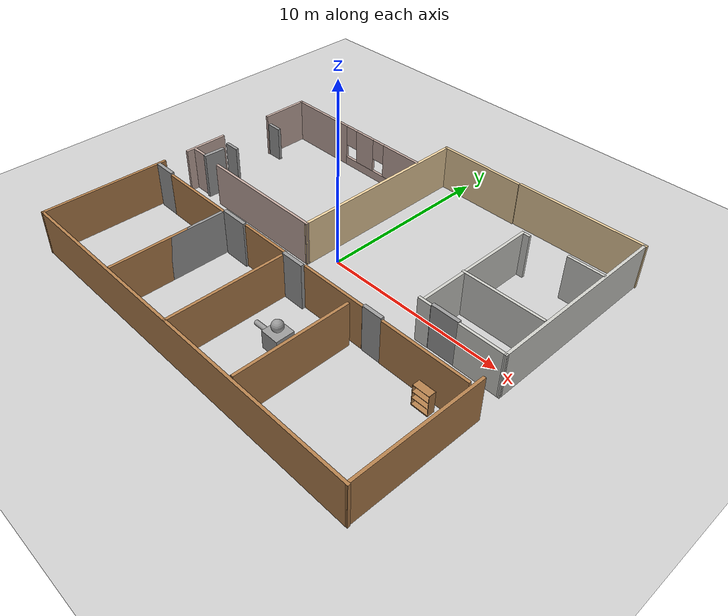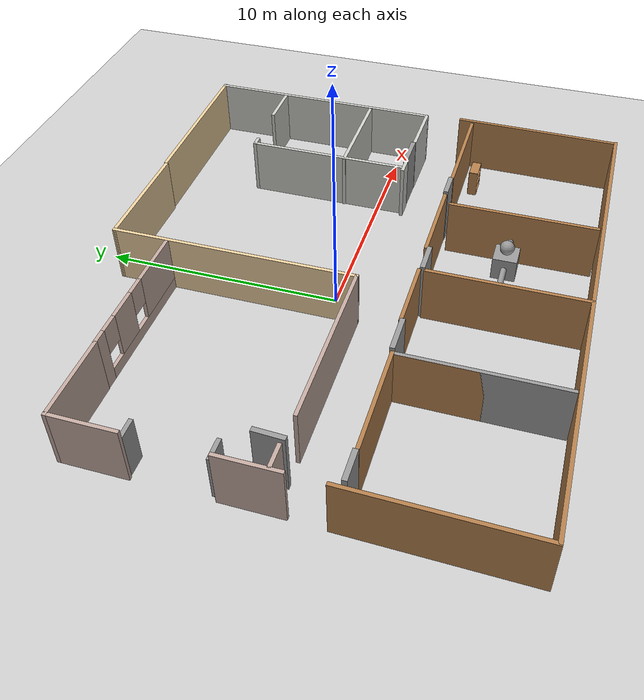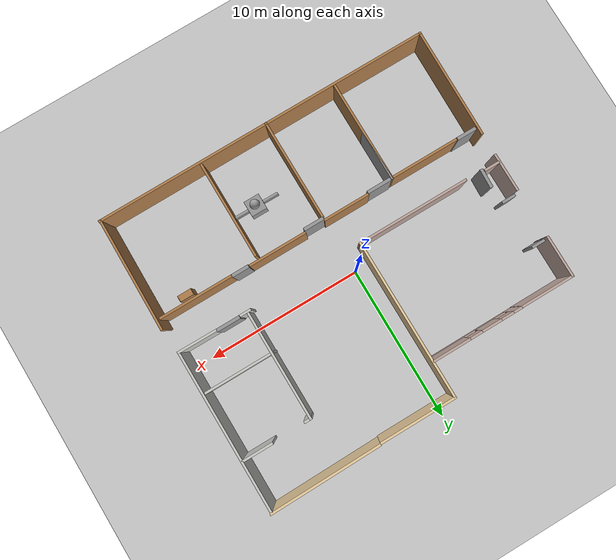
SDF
<sdf version="1.6">
 <world name="default">
  <plugin name="hello" filename="libhello.so"/>
  <light name="sun" type="directional">
   <pose>0 0 10 0 -0 0</pose>
   <diffuse>0.8 0.8 0.8 1</diffuse>
   <specular>0.2 0.2 0.2 1</specular>
   <attenuation>
    <range>1000</range>
    <constant>0.9</constant>
    <linear>0.01</linear>
    <quadratic>0.001</quadratic>
   </attenuation>
   <direction>-0.5 0.1 -0.9</direction>
  </light>
  <gravity>0 0 -9.8</gravity>
  <magnetic_field>6e-06 2.3e-05 -4.2e-05</magnetic_field>
  <atmosphere type="adiabatic"/>
  <physics name="default_physics" default="0" type="ode">
   <max_step_size>0.001</max_step_size>
   <real_time_factor>1</real_time_factor>
   <real_time_update_rate>1000</real_time_update_rate>
  </physics>
  <scene><ambient>0.4 0.4 0.4 1</ambient><background>0.7 0.7 0.7 1</background><shadows>1</shadows></scene>
  <spherical_coordinates>
   <surface_model>EARTH_WGS84</surface_model>
   <latitude_deg>0</latitude_deg>
   <longitude_deg>0</longitude_deg>
   <elevation>0</elevation>
   <heading_deg>0</heading_deg>
  </spherical_coordinates>
  <model name="Building">
   <pose>0.40551 -0.3964 0 0 -0 0</pose>
   <link name="Door_12">
    <collision name="Door_12_Collision">
     <geometry><box><size>1.264 0.2 2.6</size></box></geometry>
     <pose>0 0 1.3 0 -0 0</pose>
    </collision>
    <visual name="Door_12_Visual">
     <pose>0 0 1.3 0 -0 0</pose>
     <geometry><box><size>1.264 0.2 2.6</size></box></geometry>
     <material>
      <script><uri>file://media/materials/scripts/gazebo.material</uri><name>Gazebo/Grey</name></script>
     </material>
    </visual>
    <pose>-9.9622 -3.0454 0 0 -0 0</pose>
   </link>
   <link name="Door_13">
    <collision name="Door_13_Collision">
     <geometry><box><size>1.224 0.2 2.6</size></box></geometry>
     <pose>0 0 1.3 0 -0 0</pose>
    </collision>
    <visual name="Door_13_Visual">
     <pose>0 0 1.3 0 -0 0</pose>
     <geometry><box><size>1.224 0.2 2.6</size></box></geometry>
     <material>
      <script><uri>file://media/materials/scripts/gazebo.material</uri><name>Gazebo/Grey</name></script>
     </material>
    </visual>
    <pose>-9.53741 -0.213505 0 0 0 -1.61176</pose>
   </link>
   <link name="Door_14">
    <collision name="Door_14_Collision">
     <geometry><box><size>0.9 0.17 2</size></box></geometry>
     <pose>0 0 1 0 -0 0</pose>
    </collision>
    <visual name="Door_14_Visual">
     <pose>0 0 1 0 -0 0</pose>
     <geometry><box><size>0.9 0.17 2</size></box></geometry>
     <material>
      <script><uri>file://media/materials/scripts/gazebo.material</uri><name>Gazebo/Grey</name></script>
     </material>
    </visual>
    <pose>-10.2656 4.56025 0 0 -0 0</pose>
   </link>
   <link name="Door_15">
    <collision name="Door_15_Collision">
     <geometry><box><size>0.9 0.17 2</size></box></geometry>
     <pose>0 0 1 0 -0 0</pose>
    </collision>
    <visual name="Door_15_Visual">
     <pose>0 0 1 0 -0 0</pose>
     <geometry><box><size>0.9 0.17 2</size></box></geometry>
     <material>
      <script><uri>file://media/materials/scripts/gazebo.material</uri><name>Gazebo/Grey</name></script>
     </material>
    </visual>
    <pose>-10.1847 1.44517 0 0 -0 0</pose>
   </link>
   <link name="Door_16">
    <collision name="Door_16_Collision">
     <geometry><box><size>1.507 0.2 2.55</size></box></geometry>
     <pose>0 0 1.275 0 -0 0</pose>
    </collision>
    <visual name="Door_16_Visual">
     <pose>0 0 1.275 0 -0 0</pose>
     <geometry><box><size>1.507 0.2 2.55</size></box></geometry>
     <material>
      <script><uri>file://media/materials/scripts/gazebo.material</uri><name>Gazebo/Grey</name></script>
     </material>
    </visual>
    <pose>7.4337 -0.698972 0 0 -0 0</pose>
   </link>
   <link name="Door_5">
    <collision name="Door_5_Collision">
     <geometry><box><size>1.102 0.2 2.6</size></box></geometry>
     <pose>0 0 1.3 0 -0 0</pose>
    </collision>
    <visual name="Door_5_Visual">
     <pose>0 0 1.3 0 -0 0</pose>
     <geometry><box><size>1.102 0.2 2.6</size></box></geometry>
     <material>
      <script><uri>file://media/materials/scripts/gazebo.material</uri><name>Gazebo/Grey</name></script>
     </material>
    </visual>
    <pose>5.33001 -2.92403 0 0 -0 0</pose>
   </link>
   <link name="Door_6">
    <collision name="Door_6_Collision">
     <geometry><box><size>1.30456 0.2 2.6</size></box></geometry>
     <pose>0 0 1.3 0 -0 0</pose>
    </collision>
    <visual name="Door_6_Visual">
     <pose>0 0 1.3 0 -0 0</pose>
     <geometry><box><size>1.30456 0.2 2.6</size></box></geometry>
     <material>
      <script><uri>file://media/materials/scripts/gazebo.material</uri><name>Gazebo/Grey</name></script>
     </material>
    </visual>
    <pose>0.353974 -3.08585 0 0 -0 0</pose>
   </link>
   <link name="Door_7">
    <collision name="Door_7_Collision">
     <geometry><box><size>1.54729 0.2 2.6</size></box></geometry>
     <pose>0 0 1.3 0 -0 0</pose>
    </collision>
    <visual name="Door_7_Visual">
     <pose>0 0 1.3 0 -0 0</pose>
     <geometry><box><size>1.54729 0.2 2.6</size></box></geometry>
     <material>
      <script><uri>file://media/materials/scripts/gazebo.material</uri><name>Gazebo/Grey</name></script>
     </material>
    </visual>
    <pose>-4.01523 -3.0454 0 0 -0 0</pose>
   </link>
   <link name="Wall_100">
    <collision name="Wall_100_Collision">
     <geometry><box><size>7 0.15 2.5</size></box></geometry>
     <pose>0 0 1.25 0 -0 0</pose>
    </collision>
    <visual name="Wall_100_Visual">
     <pose>0 0 1.25 0 -0 0</pose>
     <geometry><box><size>7 0.15 2.5</size></box></geometry>
     <material>
      <script><uri>file://media/materials/scripts/gazebo.material</uri><name>Gazebo/CeilingTiled</name></script>
      <ambient>1 1 1 1</ambient>
     </material>
     <meta><layer>0</layer></meta>
    </visual>
    <pose>6.16803 2.83366 0 0 0 -1.5708</pose>
   </link>
   <link name="Wall_107">
    <collision name="Wall_107_Collision">
     <geometry><box><size>4.75 0.15 2.5</size></box></geometry>
     <pose>0 0 1.25 0 -0 0</pose>
    </collision>
    <visual name="Wall_107_Visual">
     <pose>0 0 1.25 0 -0 0</pose>
     <geometry><box><size>4.75 0.15 2.5</size></box></geometry>
     <material>
      <script><uri>file://media/materials/scripts/gazebo.material</uri><name>Gazebo/Wood</name></script>
      <ambient>0.603922 0.4 0.298039 1</ambient>
     </material>
     <meta><layer>0</layer></meta>
    </visual>
    <pose>8.26901 -2.96448 0 0 -0 3.14159</pose>
   </link>
   <link name="Wall_109">
    <collision name="Wall_109_Collision">
     <geometry><box><size>3.75 0.15 2.5</size></box></geometry>
     <pose>0 0 1.25 0 -0 0</pose>
    </collision>
    <visual name="Wall_109_Visual">
     <pose>0 0 1.25 0 -0 0</pose>
     <geometry><box><size>3.75 0.15 2.5</size></box></geometry>
     <material>
      <script><uri>file://media/materials/scripts/gazebo.material</uri><name>Gazebo/Wood</name></script>
      <ambient>0.603922 0.4 0.298039 1</ambient>
     </material>
     <meta><layer>0</layer></meta>
    </visual>
    <pose>2.86976 -2.92403 0 0 -0 3.14159</pose>
   </link>
   <link name="Wall_114">
    <collision name="Wall_114_Collision">
     <geometry><box><size>3 0.15 2.5</size></box></geometry>
     <pose>0 0 1.25 0 -0 0</pose>
    </collision>
    <visual name="Wall_114_Visual">
     <pose>0 0 1.25 0 -0 0</pose>
     <geometry><box><size>3 0.15 2.5</size></box></geometry>
     <material>
      <script><uri>file://media/materials/scripts/gazebo.material</uri><name>Gazebo/Wood</name></script>
      <ambient>0.603922 0.4 0.298039 1</ambient>
     </material>
     <meta><layer>0</layer></meta>
    </visual>
    <pose>-1.779 -2.96448 0 0 -0 3.14159</pose>
   </link>
   <link name="Wall_116">
    <collision name="Wall_116_Collision">
     <geometry><box><size>4.5 0.15 2.5</size></box></geometry>
     <pose>0 0 1.25 0 -0 0</pose>
    </collision>
    <visual name="Wall_116_Visual">
     <pose>0 0 1.25 0 -0 0</pose>
     <geometry><box><size>4.5 0.15 2.5</size></box></geometry>
     <material>
      <script><uri>file://media/materials/scripts/gazebo.material</uri><name>Gazebo/Wood</name></script>
      <ambient>0.603922 0.4 0.298039 1</ambient>
     </material>
     <meta><layer>0</layer></meta>
    </visual>
    <pose>-7.08148 -3.07404 0 0 -0 3.14159</pose>
   </link>
   <link name="Wall_51">
    <collision name="Wall_51_Collision">
     <geometry><box><size>7.12896 0.15 2.5</size></box></geometry>
     <pose>0 0 1.25 0 -0 0</pose>
    </collision>
    <visual name="Wall_51_Visual">
     <pose>0 0 1.25 0 -0 0</pose>
     <geometry><box><size>7.12896 0.15 2.5</size></box></geometry>
     <material>
      <script><uri>file://media/materials/scripts/gazebo.material</uri><name>Gazebo/Wood</name></script>
      <ambient>0.603922 0.4 0.298039 1</ambient>
     </material>
     <meta><layer>0</layer></meta>
    </visual>
    <pose>-10.8 -6.10067 0 0 0 -1.58239</pose>
   </link>
   <link name="Wall_52">
    <collision name="Wall_52_Collision">
     <geometry><box><size>21.75 0.15 2.5</size></box></geometry>
     <pose>0 0 1.25 0 -0 0</pose>
    </collision>
    <visual name="Wall_52_Visual">
     <pose>0 0 1.25 0 -0 0</pose>
     <geometry><box><size>21.75 0.15 2.5</size></box></geometry>
     <material>
      <script><uri>file://media/materials/scripts/gazebo.material</uri><name>Gazebo/Wood</name></script>
      <ambient>0.603922 0.4 0.298039 1</ambient>
     </material>
     <meta><layer>0</layer></meta>
    </visual>
    <pose>1.3e-05 -9.58992 0 0 -0 0</pose>
   </link>
   <link name="Wall_53">
    <collision name="Wall_53_Collision">
     <geometry><box><size>7.33863 0.15 2.5</size></box></geometry>
     <pose>0 0 1.25 0 -0 0</pose>
    </collision>
    <visual name="Wall_53_Visual">
     <pose>0 0 1.25 0 -0 0</pose>
     <geometry><box><size>7.33863 0.15 2.5</size></box></geometry>
     <material>
      <script><uri>file://media/materials/scripts/gazebo.material</uri><name>Gazebo/Wood</name></script>
      <ambient>0.603922 0.4 0.298039 1</ambient>
     </material>
     <meta><layer>0</layer></meta>
    </visual>
    <pose>10.8 -5.99583 0 0 -0 1.55954</pose>
   </link>
   <link name="Wall_68">
    <collision name="Wall_68_Collision">
     <geometry><box><size>6.5 0.15 2.5</size></box></geometry>
     <pose>0 0 1.25 0 -0 0</pose>
    </collision>
    <visual name="Wall_68_Visual">
     <pose>0 0 1.25 0 -0 0</pose>
     <geometry><box><size>6.5 0.15 2.5</size></box></geometry>
     <material>
      <script><uri>file://media/materials/scripts/gazebo.material</uri><name>Gazebo/Grey</name></script>
      <ambient>1 1 1 1</ambient>
     </material>
     <meta><layer>0</layer></meta>
    </visual>
    <pose>-4.90648 -6.24904 0 0 0 -1.5708</pose>
   </link>
   <link name="Wall_69">
    <collision name="Wall_69_Collision">
     <geometry><box><size>6.5 0.15 2.5</size></box></geometry>
     <pose>0 0 1.25 0 -0 0</pose>
    </collision>
    <visual name="Wall_69_Visual">
     <pose>0 0 1.25 0 -0 0</pose>
     <geometry><box><size>6.5 0.15 2.5</size></box></geometry>
     <material>
      <script><uri>file://media/materials/scripts/gazebo.material</uri><name>Gazebo/Wood</name></script>
      <ambient>0.603922 0.4 0.298039 1</ambient>
     </material>
     <meta><layer>0</layer></meta>
    </visual>
    <pose>-4.90648 -6.24904 0 0 -0 1.5708</pose>
   </link>
   <link name="Wall_71">
    <collision name="Wall_71_Collision">
     <geometry><box><size>6.5 0.15 2.5</size></box></geometry>
     <pose>0 0 1.25 0 -0 0</pose>
    </collision>
    <visual name="Wall_71_Visual">
     <pose>0 0 1.25 0 -0 0</pose>
     <geometry><box><size>6.5 0.15 2.5</size></box></geometry>
     <material>
      <script><uri>file://media/materials/scripts/gazebo.material</uri><name>Gazebo/Wood</name></script>
      <ambient>0.603922 0.4 0.298039 1</ambient>
     </material>
     <meta><layer>0</layer></meta>
    </visual>
    <pose>-0.300474 -6.39572 0 0 -0 1.5708</pose>
   </link>
   <link name="Wall_73">
    <collision name="Wall_73_Collision">
     <geometry><box><size>6.25 0.15 2.5</size></box></geometry>
     <pose>0 0 1.25 0 -0 0</pose>
    </collision>
    <visual name="Wall_73_Visual">
     <pose>0 0 1.25 0 -0 0</pose>
     <geometry><box><size>6.25 0.15 2.5</size></box></geometry>
     <material>
      <script><uri>file://media/materials/scripts/gazebo.material</uri><name>Gazebo/Wood</name></script>
      <ambient>0.603922 0.4 0.298039 1</ambient>
     </material>
     <meta><layer>0</layer></meta>
    </visual>
    <pose>4.14462 -6.3397 0 0 -0 1.5708</pose>
   </link>
   <link name="Wall_75">
    <collision name="Wall_75_Collision">
     <geometry><box><size>10.5 0.15 2.5</size></box></geometry>
     <pose>0 0 1.25 0 -0 0</pose>
    </collision>
    <visual name="Wall_75_Visual">
     <pose>0 0 1.25 0 -0 0</pose>
     <geometry><box><size>10.5 0.15 2.5</size></box></geometry>
     <material>
      <script><uri>file://media/materials/scripts/gazebo.material</uri><name>Gazebo/CeilingTiled</name></script>
      <ambient>1 1 1 1</ambient>
     </material>
     <meta><layer>0</layer></meta>
    </visual>
    <pose>10.6614 4.41494 0 0 -0 1.5708</pose>
   </link>
   <link name="Wall_76">
    <collision name="Wall_76_Collision">
     <geometry><box><size>7.24417 0.15 2.5</size></box></geometry>
     <pose>0 0 1.25 0 -0 0</pose>
    </collision>
    <visual name="Wall_76_Visual">
     <pose>0 0 1.25 0 -0 0</pose>
     <geometry><box><size>7.24417 0.15 2.5</size></box></geometry>
     <material>
      <script><uri>file://media/materials/scripts/gazebo.material</uri><name>Gazebo/Grey</name></script>
      <ambient>0.921569 0.807843 0.615686 1</ambient>
     </material>
     <meta><layer>0</layer></meta>
    </visual>
    <pose>7.15502 9.54948 0 0 0 -3.13019</pose>
   </link>
   <link name="Wall_78">
    <collision name="Wall_78_Collision">
     <geometry><box><size>5 0.15 2.5</size></box></geometry>
     <pose>0 0 1.25 0 -0 0</pose>
    </collision>
    <visual name="Wall_78_Visual">
     <pose>0 0 1.25 0 -0 0</pose>
     <geometry><box><size>5 0.15 2.5</size></box></geometry>
     <material>
      <script><uri>file://media/materials/scripts/gazebo.material</uri><name>Gazebo/Grey</name></script>
      <ambient>0.921569 0.807843 0.615686 1</ambient>
     </material>
     <meta><layer>0</layer></meta>
    </visual>
    <pose>1.03576 9.45672 0 0 -0 3.14159</pose>
   </link>
   <link name="Wall_79">
    <collision name="Wall_79_Collision">
     <geometry><box><size>10.3677 0.15 2.5</size></box></geometry>
     <pose>0 0 1.25 0 -0 0</pose>
    </collision>
    <visual name="Wall_79_Visual">
     <pose>0 0 1.25 0 -0 0</pose>
     <geometry><box><size>10.3677 0.15 2.5</size></box></geometry>
     <material>
      <script><uri>file://media/materials/scripts/gazebo.material</uri><name>Gazebo/Grey</name></script>
      <ambient>0.921569 0.807843 0.615686 1</ambient>
     </material>
     <meta><layer>0</layer></meta>
    </visual>
    <pose>-1.37786 4.34787 0 0 0 -1.56857</pose>
   </link>
   <link name="Wall_80">
    <collision name="Wall_80_Collision">
     <geometry><box><size>7.25 0.15 2.5</size></box></geometry>
     <pose>0 0 1.25 0 -0 0</pose>
    </collision>
    <visual name="Wall_80_Visual">
     <pose>0 0 1.25 0 -0 0</pose>
     <geometry><box><size>7.25 0.15 2.5</size></box></geometry>
     <material>
      <script><uri>file://media/materials/scripts/gazebo.material</uri><name>Gazebo/Grey</name></script>
      <ambient>0.760784 0.662745 0.627451 1</ambient>
     </material>
     <meta><layer>0</layer></meta>
    </visual>
    <pose>-4.91649 -0.760978 0 0 -0 3.14159</pose>
   </link>
   <link name="Wall_82">
    <collision name="Wall_82_Collision">
     <geometry><box><size>1 0.15 2.5</size></box></geometry>
     <pose>0 0 1.25 0 -0 0</pose>
    </collision>
    <visual name="Wall_82_Visual">
     <pose>0 0 1.25 0 -0 0</pose>
     <geometry><box><size>1 0.15 2.5</size></box></geometry>
     <material>
      <script><uri>file://media/materials/scripts/gazebo.material</uri><name>Gazebo/Grey</name></script>
      <ambient>0.760784 0.662745 0.627451 1</ambient>
     </material>
     <meta><layer>0</layer></meta>
    </visual>
    <pose>-10.2186 -0.659725 0 0 -0 3.14159</pose>
   </link>
   <link name="Wall_84">
    <collision name="Wall_84_Collision">
     <geometry><box><size>2.5 0.15 2.5</size></box></geometry>
     <pose>0 0 1.25 0 -0 0</pose>
    </collision>
    <visual name="Wall_84_Visual">
     <pose>0 0 1.25 0 -0 0</pose>
     <geometry><box><size>2.5 0.15 2.5</size></box></geometry>
     <material>
      <script><uri>file://media/materials/scripts/gazebo.material</uri><name>Gazebo/Grey</name></script>
      <ambient>0.760784 0.662745 0.627451 1</ambient>
     </material>
     <meta><layer>0</layer></meta>
    </visual>
    <pose>-10.7394 0.072092 0 0 -0 1.5708</pose>
   </link>
   <link name="Wall_86">
    <collision name="Wall_86_Collision">
     <geometry><box><size>2.75 0.15 2.5</size></box></geometry>
     <pose>0 0 1.25 0 -0 0</pose>
    </collision>
    <visual name="Wall_86_Visual">
     <pose>0 0 1.25 0 -0 0</pose>
     <geometry><box><size>2.75 0.15 2.5</size></box></geometry>
     <material>
      <script><uri>file://media/materials/scripts/gazebo.material</uri><name>Gazebo/Grey</name></script>
      <ambient>0.760784 0.662745 0.627451 1</ambient>
     </material>
     <meta><layer>0</layer></meta>
    </visual>
    <pose>-10.7595 5.80878 0 0 -0 1.5708</pose>
   </link>
   <link name="Wall_87">
    <collision name="Wall_87_Collision">
     <geometry><box><size>3.5 0.15 2.5</size></box></geometry>
     <pose>0 0 1.25 0 -0 0</pose>
    </collision>
    <visual name="Wall_87_Visual">
     <pose>0 0 1.25 0 -0 0</pose>
     <geometry><box><size>3.5 0.15 2.5</size></box></geometry>
     <material>
      <script><uri>file://media/materials/scripts/gazebo.material</uri><name>Gazebo/Grey</name></script>
      <ambient>0.760784 0.662745 0.627451 1</ambient>
     </material>
     <meta><layer>0</layer></meta>
    </visual>
    <pose>-9.08453 7.10878 0 0 -0 0</pose>
   </link>
   <link name="Wall_89">
    <pose>-4.39819 7.12354 0 0 -0 0</pose>
    <visual name="Wall_89_Visual_0">
     <pose>-2.69184 0 1.25 0 -0 0</pose>
     <geometry><box><size>0.61631 0.15 2.5</size></box></geometry>
     <material>
      <script><uri>file://media/materials/scripts/gazebo.material</uri><name>Gazebo/Grey</name></script>
      <ambient>0.760784 0.662745 0.627451 1</ambient>
     </material>
     <meta><layer>0</layer></meta>
    </visual>
    <collision name="Wall_89_Collision_0">
     <geometry><box><size>0.61631 0.15 2.5</size></box></geometry>
     <pose>-2.69184 0 1.25 0 -0 0</pose>
    </collision>
    <visual name="Wall_89_Visual_1">
     <pose>0.308155 0 0.25 0 -0 0</pose>
     <geometry><box><size>5.38369 0.15 0.5</size></box></geometry>
     <material>
      <script><uri>file://media/materials/scripts/gazebo.material</uri><name>Gazebo/Grey</name></script>
      <ambient>0.760784 0.662745 0.627451 1</ambient>
     </material>
     <meta><layer>0</layer></meta>
    </visual>
    <collision name="Wall_89_Collision_1">
     <geometry><box><size>5.38369 0.15 0.5</size></box></geometry>
     <pose>0.308155 0 0.25 0 -0 0</pose>
    </collision>
    <visual name="Wall_89_Visual_2">
     <pose>-0.931845 0 1.5 0 -0 0</pose>
     <geometry><box><size>1.30369 0.15 2</size></box></geometry>
     <material>
      <script><uri>file://media/materials/scripts/gazebo.material</uri><name>Gazebo/Grey</name></script>
      <ambient>0.760784 0.662745 0.627451 1</ambient>
     </material>
     <meta><layer>0</layer></meta>
    </visual>
    <collision name="Wall_89_Collision_2">
     <geometry><box><size>1.30369 0.15 2</size></box></geometry>
     <pose>-0.931845 0 1.5 0 -0 0</pose>
    </collision>
    <visual name="Wall_89_Visual_3">
     <pose>1.76 0 1.5 0 -0 0</pose>
     <geometry><box><size>2.48 0.15 2</size></box></geometry>
     <material>
      <script><uri>file://media/materials/scripts/gazebo.material</uri><name>Gazebo/Grey</name></script>
      <ambient>0.760784 0.662745 0.627451 1</ambient>
     </material>
     <meta><layer>0</layer></meta>
    </visual>
    <collision name="Wall_89_Collision_3">
     <geometry><box><size>2.48 0.15 2</size></box></geometry>
     <pose>1.76 0 1.5 0 -0 0</pose>
    </collision>
    <visual name="Wall_89_Visual_4">
     <pose>-1.98369 0 1.9 0 -0 0</pose>
     <geometry><box><size>0.8 0.15 1.2</size></box></geometry>
     <material>
      <script><uri>file://media/materials/scripts/gazebo.material</uri><name>Gazebo/Grey</name></script>
      <ambient>0.760784 0.662745 0.627451 1</ambient>
     </material>
     <meta><layer>0</layer></meta>
    </visual>
    <collision name="Wall_89_Collision_4">
     <geometry><box><size>0.8 0.15 1.2</size></box></geometry>
     <pose>-1.98369 0 1.9 0 -0 0</pose>
    </collision>
    <visual name="Wall_89_Visual_5">
     <pose>0.119999 0 1.9 0 -0 0</pose>
     <geometry><box><size>0.8 0.15 1.2</size></box></geometry>
     <material>
      <script><uri>file://media/materials/scripts/gazebo.material</uri><name>Gazebo/Grey</name></script>
      <ambient>0.760784 0.662745 0.627451 1</ambient>
     </material>
     <meta><layer>0</layer></meta>
    </visual>
    <collision name="Wall_89_Collision_5">
     <geometry><box><size>0.8 0.15 1.2</size></box></geometry>
     <pose>0.119999 0 1.9 0 -0 0</pose>
    </collision>
   </link>
   <link name="Wall_91">
    <collision name="Wall_91_Collision">
     <geometry><box><size>2 0.15 2.5</size></box></geometry>
     <pose>0 0 1.25 0 -0 0</pose>
    </collision>
    <visual name="Wall_91_Visual">
     <pose>0 0 1.25 0 -0 0</pose>
     <geometry><box><size>2 0.15 2.5</size></box></geometry>
     <material>
      <script><uri>file://media/materials/scripts/gazebo.material</uri><name>Gazebo/CeilingTiled</name></script>
      <ambient>1 1 1 1</ambient>
     </material>
     <meta><layer>0</layer></meta>
    </visual>
    <pose>9.65597 6.319 0 0 -0 3.14159</pose>
   </link>
   <link name="Wall_93">
    <collision name="Wall_93_Collision">
     <geometry><box><size>4.5 0.15 2.5</size></box></geometry>
     <pose>0 0 1.25 0 -0 0</pose>
    </collision>
    <visual name="Wall_93_Visual">
     <pose>0 0 1.25 0 -0 0</pose>
     <geometry><box><size>4.5 0.15 2.5</size></box></geometry>
     <material>
      <script><uri>file://media/materials/scripts/gazebo.material</uri><name>Gazebo/CeilingTiled</name></script>
      <ambient>1 1 1 1</ambient>
     </material>
     <meta><layer>0</layer></meta>
    </visual>
    <pose>8.3054 1.99458 0 0 -0 3.14159</pose>
   </link>
   <link name="Wall_95">
    <collision name="Wall_95_Collision">
     <geometry><box><size>2.56042 0.15 2.5</size></box></geometry>
     <pose>0 0 1.25 0 -0 0</pose>
    </collision>
    <visual name="Wall_95_Visual">
     <pose>0 0 1.25 0 -0 0</pose>
     <geometry><box><size>2.56042 0.15 2.5</size></box></geometry>
     <material>
      <script><uri>file://media/materials/scripts/gazebo.material</uri><name>Gazebo/CeilingTiled</name></script>
      <ambient>1 1 1 1</ambient>
     </material>
     <meta><layer>0</layer></meta>
    </visual>
    <pose>9.45625 -0.750464 0 0 -0 3.13363</pose>
   </link>
   <link name="Wall_97">
    <collision name="Wall_97_Collision">
     <geometry><box><size>0.75 0.15 2.5</size></box></geometry>
     <pose>0 0 1.25 0 -0 0</pose>
    </collision>
    <visual name="Wall_97_Visual">
     <pose>0 0 1.25 0 -0 0</pose>
     <geometry><box><size>0.75 0.15 2.5</size></box></geometry>
     <material>
      <script><uri>file://media/materials/scripts/gazebo.material</uri><name>Gazebo/CeilingTiled</name></script>
      <ambient>1 1 1 1</ambient>
     </material>
     <meta><layer>0</layer></meta>
    </visual>
    <pose>6.29848 -0.740864 0 0 -0 3.14159</pose>
   </link>
   <link name="Wall_99">
    <collision name="Wall_99_Collision">
     <geometry><box><size>0.5 0.15 2.5</size></box></geometry>
     <pose>0 0 1.25 0 -0 0</pose>
    </collision>
    <visual name="Wall_99_Visual">
     <pose>0 0 1.25 0 -0 0</pose>
     <geometry><box><size>0.5 0.15 2.5</size></box></geometry>
     <material>
      <script><uri>file://media/materials/scripts/gazebo.material</uri><name>Gazebo/CeilingTiled</name></script>
      <ambient>1 1 1 1</ambient>
     </material>
     <meta><layer>0</layer></meta>
    </visual>
    <pose>6.34303 6.25866 0 0 -0 3.14159</pose>
   </link>
   <static>1</static>
  </model>
  <model name="bookshelf">
   <static>1</static>
   <link name="link">
    <inertial><mass>1</mass></inertial>
    <collision name="back">
     <pose>0 0.005 0.6 0 -0 0</pose>
     <geometry><box><size>0.9 0.01 1.2</size></box></geometry>
    </collision>
    <visual name="visual1">
     <pose>0 0.005 0.6 0 -0 0</pose>
     <geometry><box><size>0.9 0.01 1.2</size></box></geometry>
     <material>
      <script><uri>file://media/materials/scripts/gazebo.material</uri><name>Gazebo/Wood</name></script>
     </material>
    </visual>
    <collision name="left_side">
     <pose>0.45 -0.195 0.6 0 -0 0</pose>
     <geometry><box><size>0.02 0.4 1.2</size></box></geometry>
    </collision>
    <visual name="visual2">
     <pose>0.45 -0.195 0.6 0 -0 0</pose>
     <geometry><box><size>0.02 0.4 1.2</size></box></geometry>
     <material>
      <script><uri>file://media/materials/scripts/gazebo.material</uri><name>Gazebo/Wood</name></script>
     </material>
    </visual>
    <collision name="right_side">
     <pose>-0.45 -0.195 0.6 0 -0 0</pose>
     <geometry><box><size>0.02 0.4 1.2</size></box></geometry>
    </collision>
    <visual name="visual3">
     <pose>-0.45 -0.195 0.6 0 -0 0</pose>
     <geometry><box><size>0.02 0.4 1.2</size></box></geometry>
     <material>
      <script><uri>file://media/materials/scripts/gazebo.material</uri><name>Gazebo/Wood</name></script>
     </material>
    </visual>
    <collision name="bottom">
     <pose>0 -0.195 0.03 0 -0 0</pose>
     <geometry><box><size>0.88 0.4 0.06</size></box></geometry>
    </collision>
    <visual name="visual4">
     <pose>0 -0.195 0.03 0 -0 0</pose>
     <geometry><box><size>0.88 0.4 0.06</size></box></geometry>
     <material>
      <script><uri>file://media/materials/scripts/gazebo.material</uri><name>Gazebo/Wood</name></script>
     </material>
    </visual>
    <collision name="top">
     <pose>0 -0.195 1.19 0 -0 0</pose>
     <geometry><box><size>0.88 0.4 0.02</size></box></geometry>
    </collision>
    <visual name="visual5">
     <pose>0 -0.195 1.19 0 -0 0</pose>
     <geometry><box><size>0.88 0.4 0.02</size></box></geometry>
     <material>
      <script><uri>file://media/materials/scripts/gazebo.material</uri><name>Gazebo/Wood</name></script>
     </material>
    </visual>
    <collision name="low_shelf">
     <pose>0 -0.195 0.43 0 -0 0</pose>
     <geometry><box><size>0.88 0.4 0.02</size></box></geometry>
    </collision>
    <visual name="visual6">
     <pose>0 -0.195 0.43 0 -0 0</pose>
     <geometry><box><size>0.88 0.4 0.02</size></box></geometry>
     <material>
      <script><uri>file://media/materials/scripts/gazebo.material</uri><name>Gazebo/Wood</name></script>
     </material>
    </visual>
    <collision name="high_shelf">
     <pose>0 -0.195 0.8 0 -0 0</pose>
     <geometry><box><size>0.88 0.4 0.02</size></box></geometry>
    </collision>
    <visual name="visual7">
     <pose>0 -0.195 0.8 0 -0 0</pose>
     <geometry><box><size>0.88 0.4 0.02</size></box></geometry>
     <material>
      <script><uri>file://media/materials/scripts/gazebo.material</uri><name>Gazebo/Wood</name></script>
     </material>
    </visual>
   </link>
   <pose>9.31281 -3.75165 0 0 -0 0</pose>
  </model>
  <model name="ground_plane">
   <static>1</static>
   <link name="link">
    <collision name="collision">
     <geometry><plane><normal>0 0 1</normal><size>100 100</size></plane></geometry>
     <surface><friction><ode><mu>100</mu><mu2>50</mu2></ode></friction></surface>
    </collision>
    <visual name="visual">
     <cast_shadows>0</cast_shadows>
     <geometry><plane><normal>0 0 1</normal><size>100 100</size></plane></geometry>
     <material>
      <script><uri>file://media/materials/scripts/gazebo.material</uri><name>Gazebo/Grey</name></script>
     </material>
    </visual>
   </link>
   <pose>-3.8747 13.4824 0 0 -0 0</pose>
  </model>
  <light name="user_point_light_0" type="point">
   <pose>-1.87393 -12.1483 1 0 -0 0</pose>
   <diffuse>0.5 0.5 0.5 1</diffuse>
   <specular>0.1 0.1 0.1 1</specular>
   <attenuation>
    <range>20</range>
    <constant>0.5</constant>
    <linear>0.01</linear>
    <quadratic>0.001</quadratic>
   </attenuation>
   <cast_shadows>0</cast_shadows>
   <direction>0 0 -1</direction>
  </light>
  <model name="first_model-edited">
   <link name="link_0">
    <pose>1.34948 -1.03796 -0.376734 0 -0 0</pose>
    <inertial>
     <mass>0.0094372</mass>
     <inertia>
      <ixx>0.00013078</ixx>
      <ixy>0</ixy>
      <ixz>0</ixz>
      <iyy>6.914e-05</iyy>
      <iyz>0</iyz>
      <izz>0.00018908</izz>
     </inertia>
    </inertial>
    <visual name="visual">
     <geometry><box><size>0.284636 0.399254 0.083044</size></box></geometry>
     <material>
      <lighting>1</lighting>
      <script><uri>file://media/materials/scripts/gazebo.material</uri><name>Gazebo/Grey</name></script>
      <shader type="pixel"><normal_map>__default__</normal_map></shader>
      <ambient>0.3 0.3 0.3 1</ambient>
      <diffuse>0.7 0.7 0.7 1</diffuse>
      <specular>0.01 0.01 0.01 1</specular>
      <emissive>0 0 0 1</emissive>
     </material>
    </visual>
    <collision name="collision">
     <geometry><box><size>0.284636 0.399254 0.083044</size></box></geometry>
     <surface>
      <friction>
       <ode><mu>1</mu><mu2>1</mu2><fdir1>0 0 0</fdir1><slip1>0</slip1><slip2>0</slip2></ode>
       <torsional>
        <coefficient>1</coefficient>
        <patch_radius>0</patch_radius>
        <surface_radius>0</surface_radius>
        <use_patch_radius>1</use_patch_radius>
        <ode><slip>0</slip></ode>
       </torsional>
      </friction>
      <bounce><restitution_coefficient>0</restitution_coefficient><threshold>1e+06</threshold></bounce>
      <contact>
       <collide_without_contact>0</collide_without_contact>
       <collide_without_contact_bitmask>1</collide_without_contact_bitmask>
       <collide_bitmask>1</collide_bitmask>
       <ode>
        <soft_cfm>0</soft_cfm>
        <soft_erp>0.2</soft_erp>
        <kp>1e+13</kp>
        <kd>1</kd>
        <max_vel>0.01</max_vel>
        <min_depth>0</min_depth>
       </ode>
       <bullet>
        <split_impulse>1</split_impulse>
        <split_impulse_penetration_threshold>-0.01</split_impulse_penetration_threshold>
        <soft_cfm>0</soft_cfm>
        <soft_erp>0.2</soft_erp>
        <kp>1e+13</kp>
        <kd>1</kd>
       </bullet>
      </contact>
     </surface>
    </collision>
   </link>
   <link name="link_0_clone">
    <pose>0.761524 -0.928795 -0.376734 0 -0 0</pose>
    <inertial>
     <mass>0.0094372</mass>
     <inertia>
      <ixx>0.00013078</ixx>
      <ixy>0</ixy>
      <ixz>0</ixz>
      <iyy>6.914e-05</iyy>
      <iyz>0</iyz>
      <izz>0.00018908</izz>
     </inertia>
    </inertial>
    <visual name="visual">
     <geometry><box><size>0.284636 0.399254 0.083044</size></box></geometry>
     <material>
      <lighting>1</lighting>
      <script><uri>file://media/materials/scripts/gazebo.material</uri><name>Gazebo/Grey</name></script>
      <shader type="pixel"><normal_map>__default__</normal_map></shader>
      <ambient>0.3 0.3 0.3 1</ambient>
      <diffuse>0.7 0.7 0.7 1</diffuse>
      <specular>0.01 0.01 0.01 1</specular>
      <emissive>0 0 0 1</emissive>
     </material>
    </visual>
    <collision name="collision">
     <geometry><box><size>0.284636 0.399254 0.083044</size></box></geometry>
     <surface>
      <friction>
       <ode><mu>1</mu><mu2>1</mu2><fdir1>0 0 0</fdir1><slip1>0</slip1><slip2>0</slip2></ode>
       <torsional>
        <coefficient>1</coefficient>
        <patch_radius>0</patch_radius>
        <surface_radius>0</surface_radius>
        <use_patch_radius>1</use_patch_radius>
        <ode><slip>0</slip></ode>
       </torsional>
      </friction>
      <bounce><restitution_coefficient>0</restitution_coefficient><threshold>1e+06</threshold></bounce>
      <contact>
       <collide_without_contact>0</collide_without_contact>
       <collide_without_contact_bitmask>1</collide_without_contact_bitmask>
       <collide_bitmask>1</collide_bitmask>
       <ode>
        <soft_cfm>0</soft_cfm>
        <soft_erp>0.2</soft_erp>
        <kp>1e+13</kp>
        <kd>1</kd>
        <max_vel>0.01</max_vel>
        <min_depth>0</min_depth>
       </ode>
       <bullet>
        <split_impulse>1</split_impulse>
        <split_impulse_penetration_threshold>-0.01</split_impulse_penetration_threshold>
        <soft_cfm>0</soft_cfm>
        <soft_erp>0.2</soft_erp>
        <kp>1e+13</kp>
        <kd>1</kd>
       </bullet>
      </contact>
     </surface>
    </collision>
   </link>
   <link name="link_1">
    <pose>0.763842 -0.869168 0.081744 0 -0 0</pose>
    <inertial>
     <mass>0.0171814</mass>
     <inertia>
      <ixx>0.00145024</ixx>
      <ixy>0</ixy>
      <ixz>0</ixz>
      <iyy>0.00145024</iyy>
      <iyz>0</iyz>
      <izz>3.69e-05</izz>
     </inertia>
    </inertial>
    <visual name="visual">
     <geometry><cylinder><radius>0.0655402</radius><length>1</length></cylinder></geometry>
     <material>
      <lighting>1</lighting>
      <script><uri>file://media/materials/scripts/gazebo.material</uri><name>Gazebo/Grey</name></script>
      <shader type="pixel"><normal_map>__default__</normal_map></shader>
      <ambient>0.3 0.3 0.3 1</ambient>
      <diffuse>0.7 0.7 0.7 1</diffuse>
      <specular>0.01 0.01 0.01 1</specular>
      <emissive>0 0 0 1</emissive>
     </material>
    </visual>
    <collision name="collision">
     <geometry><cylinder><radius>0.06554</radius><length>1</length></cylinder></geometry>
     <surface>
      <friction>
       <ode><mu>1</mu><mu2>1</mu2><fdir1>0 0 0</fdir1><slip1>0</slip1><slip2>0</slip2></ode>
       <torsional>
        <coefficient>1</coefficient>
        <patch_radius>0</patch_radius>
        <surface_radius>0</surface_radius>
        <use_patch_radius>1</use_patch_radius>
        <ode><slip>0</slip></ode>
       </torsional>
      </friction>
      <bounce><restitution_coefficient>0</restitution_coefficient><threshold>1e+06</threshold></bounce>
      <contact>
       <collide_without_contact>0</collide_without_contact>
       <collide_without_contact_bitmask>1</collide_without_contact_bitmask>
       <collide_bitmask>1</collide_bitmask>
       <ode>
        <soft_cfm>0</soft_cfm>
        <soft_erp>0.2</soft_erp>
        <kp>1e+13</kp>
        <kd>1</kd>
        <max_vel>0.01</max_vel>
        <min_depth>0</min_depth>
       </ode>
       <bullet>
        <split_impulse>1</split_impulse>
        <split_impulse_penetration_threshold>-0.01</split_impulse_penetration_threshold>
        <soft_cfm>0</soft_cfm>
        <soft_erp>0.2</soft_erp>
        <kp>1e+13</kp>
        <kd>1</kd>
       </bullet>
      </contact>
     </surface>
    </collision>
   </link>
   <link name="link_1_clone">
    <pose>1.34948 -0.903875 0.081744 0 -0 0</pose>
    <inertial>
     <mass>0.0171814</mass>
     <inertia>
      <ixx>0.00145024</ixx>
      <ixy>0</ixy>
      <ixz>0</ixz>
      <iyy>0.00145024</iyy>
      <iyz>0</iyz>
      <izz>3.69e-05</izz>
     </inertia>
    </inertial>
    <visual name="visual">
     <geometry><cylinder><radius>0.0655402</radius><length>1</length></cylinder></geometry>
     <material>
      <lighting>1</lighting>
      <script><uri>file://media/materials/scripts/gazebo.material</uri><name>Gazebo/Grey</name></script>
      <shader type="pixel"><normal_map>__default__</normal_map></shader>
      <ambient>0.3 0.3 0.3 1</ambient>
      <diffuse>0.7 0.7 0.7 1</diffuse>
      <specular>0.01 0.01 0.01 1</specular>
      <emissive>0 0 0 1</emissive>
     </material>
    </visual>
    <collision name="collision">
     <geometry><cylinder><radius>0.06554</radius><length>1</length></cylinder></geometry>
     <surface>
      <friction>
       <ode><mu>1</mu><mu2>1</mu2><fdir1>0 0 0</fdir1><slip1>0</slip1><slip2>0</slip2></ode>
       <torsional>
        <coefficient>1</coefficient>
        <patch_radius>0</patch_radius>
        <surface_radius>0</surface_radius>
        <use_patch_radius>1</use_patch_radius>
        <ode><slip>0</slip></ode>
       </torsional>
      </friction>
      <bounce><restitution_coefficient>0</restitution_coefficient><threshold>1e+06</threshold></bounce>
      <contact>
       <collide_without_contact>0</collide_without_contact>
       <collide_without_contact_bitmask>1</collide_without_contact_bitmask>
       <collide_bitmask>1</collide_bitmask>
       <ode>
        <soft_cfm>0</soft_cfm>
        <soft_erp>0.2</soft_erp>
        <kp>1e+13</kp>
        <kd>1</kd>
        <max_vel>0.01</max_vel>
        <min_depth>0</min_depth>
       </ode>
       <bullet>
        <split_impulse>1</split_impulse>
        <split_impulse_penetration_threshold>-0.01</split_impulse_penetration_threshold>
        <soft_cfm>0</soft_cfm>
        <soft_erp>0.2</soft_erp>
        <kp>1e+13</kp>
        <kd>1</kd>
       </bullet>
      </contact>
     </surface>
    </collision>
   </link>
   <link name="link_3">
    <pose>1.05896 -0.938686 1.08174 0 -0 0</pose>
    <inertial>
     <mass>1</mass>
     <inertia>
      <ixx>0.166667</ixx>
      <ixy>0</ixy>
      <ixz>0</ixz>
      <iyy>0.166667</iyy>
      <iyz>0</iyz>
      <izz>0.166667</izz>
     </inertia>
    </inertial>
    <visual name="visual">
     <geometry><box><size>1 1 1</size></box></geometry>
     <material>
      <lighting>1</lighting>
      <script><uri>file://media/materials/scripts/gazebo.material</uri><name>Gazebo/Grey</name></script>
      <shader type="pixel"><normal_map>__default__</normal_map></shader>
      <ambient>0.3 0.3 0.3 1</ambient>
      <diffuse>0.7 0.7 0.7 1</diffuse>
      <specular>0.01 0.01 0.01 1</specular>
      <emissive>0 0 0 1</emissive>
     </material>
    </visual>
    <collision name="collision">
     <geometry><box><size>1 1 1</size></box></geometry>
     <surface>
      <friction>
       <ode><mu>1</mu><mu2>1</mu2><fdir1>0 0 0</fdir1><slip1>0</slip1><slip2>0</slip2></ode>
       <torsional>
        <coefficient>1</coefficient>
        <patch_radius>0</patch_radius>
        <surface_radius>0</surface_radius>
        <use_patch_radius>1</use_patch_radius>
        <ode><slip>0</slip></ode>
       </torsional>
      </friction>
      <bounce><restitution_coefficient>0</restitution_coefficient><threshold>1e+06</threshold></bounce>
      <contact>
       <collide_without_contact>0</collide_without_contact>
       <collide_without_contact_bitmask>1</collide_without_contact_bitmask>
       <collide_bitmask>1</collide_bitmask>
       <ode>
        <soft_cfm>0</soft_cfm>
        <soft_erp>0.2</soft_erp>
        <kp>1e+13</kp>
        <kd>1</kd>
        <max_vel>0.01</max_vel>
        <min_depth>0</min_depth>
       </ode>
       <bullet>
        <split_impulse>1</split_impulse>
        <split_impulse_penetration_threshold>-0.01</split_impulse_penetration_threshold>
        <soft_cfm>0</soft_cfm>
        <soft_erp>0.2</soft_erp>
        <kp>1e+13</kp>
        <kd>1</kd>
       </bullet>
      </contact>
     </surface>
    </collision>
   </link>
   <link name="link_4">
    <pose>1.05896 -0.938686 1.88247 0 -0 0</pose>
    <inertial>
     <mass>0.217579</mass>
     <inertia>
      <ixx>0.00787095</ixx>
      <ixy>0</ixy>
      <ixz>0</ixz>
      <iyy>0.00787095</iyy>
      <iyz>0</iyz>
      <izz>0.00787095</izz>
     </inertia>
    </inertial>
    <visual name="visual">
     <geometry><sphere><radius>0.300729</radius></sphere></geometry>
     <material>
      <lighting>1</lighting>
      <script><uri>file://media/materials/scripts/gazebo.material</uri><name>Gazebo/Grey</name></script>
      <shader type="pixel"><normal_map>__default__</normal_map></shader>
      <ambient>0.3 0.3 0.3 1</ambient>
      <diffuse>0.7 0.7 0.7 1</diffuse>
      <specular>0.01 0.01 0.01 1</specular>
      <emissive>0 0 0 1</emissive>
     </material>
    </visual>
    <collision name="collision">
     <geometry><sphere><radius>0.300729</radius></sphere></geometry>
     <surface>
      <friction>
       <ode><mu>1</mu><mu2>1</mu2><fdir1>0 0 0</fdir1><slip1>0</slip1><slip2>0</slip2></ode>
       <torsional>
        <coefficient>1</coefficient>
        <patch_radius>0</patch_radius>
        <surface_radius>0</surface_radius>
        <use_patch_radius>1</use_patch_radius>
        <ode><slip>0</slip></ode>
       </torsional>
      </friction>
      <bounce><restitution_coefficient>0</restitution_coefficient><threshold>1e+06</threshold></bounce>
      <contact>
       <collide_without_contact>0</collide_without_contact>
       <collide_without_contact_bitmask>1</collide_without_contact_bitmask>
       <collide_bitmask>1</collide_bitmask>
       <ode>
        <soft_cfm>0</soft_cfm>
        <soft_erp>0.2</soft_erp>
        <kp>1e+13</kp>
        <kd>1</kd>
        <max_vel>0.01</max_vel>
        <min_depth>0</min_depth>
       </ode>
       <bullet>
        <split_impulse>1</split_impulse>
        <split_impulse_penetration_threshold>-0.01</split_impulse_penetration_threshold>
        <soft_cfm>0</soft_cfm>
        <soft_erp>0.2</soft_erp>
        <kp>1e+13</kp>
        <kd>1</kd>
       </bullet>
      </contact>
     </surface>
    </collision>
   </link>
   <link name="link_6">
    <pose>0.053462 -0.945873 1.08892 0 1.52826 0</pose>
    <inertial>
     <mass>0.0631262</mass>
     <inertia>
      <ixx>0.00550958</ixx>
      <ixy>0</ixy>
      <ixz>0</ixz>
      <iyy>0.00550958</iyy>
      <iyz>0</iyz>
      <izz>0.00049812</izz>
     </inertia>
    </inertial>
    <visual name="visual">
     <geometry><cylinder><radius>0.125625</radius><length>1</length></cylinder></geometry>
     <material>
      <lighting>1</lighting>
      <script><uri>file://media/materials/scripts/gazebo.material</uri><name>Gazebo/Grey</name></script>
      <shader type="pixel"><normal_map>__default__</normal_map></shader>
      <ambient>0.3 0.3 0.3 1</ambient>
      <diffuse>0.7 0.7 0.7 1</diffuse>
      <specular>0.01 0.01 0.01 1</specular>
      <emissive>0 0 0 1</emissive>
     </material>
    </visual>
    <collision name="collision">
     <geometry><cylinder><radius>0.125625</radius><length>1</length></cylinder></geometry>
     <surface>
      <friction>
       <ode><mu>1</mu><mu2>1</mu2><fdir1>0 0 0</fdir1><slip1>0</slip1><slip2>0</slip2></ode>
       <torsional>
        <coefficient>1</coefficient>
        <patch_radius>0</patch_radius>
        <surface_radius>0</surface_radius>
        <use_patch_radius>1</use_patch_radius>
        <ode><slip>0</slip></ode>
       </torsional>
      </friction>
      <bounce><restitution_coefficient>0</restitution_coefficient><threshold>1e+06</threshold></bounce>
      <contact>
       <collide_without_contact>0</collide_without_contact>
       <collide_without_contact_bitmask>1</collide_without_contact_bitmask>
       <collide_bitmask>1</collide_bitmask>
       <ode>
        <soft_cfm>0</soft_cfm>
        <soft_erp>0.2</soft_erp>
        <kp>1e+13</kp>
        <kd>1</kd>
        <max_vel>0.01</max_vel>
        <min_depth>0</min_depth>
       </ode>
       <bullet>
        <split_impulse>1</split_impulse>
        <split_impulse_penetration_threshold>-0.01</split_impulse_penetration_threshold>
        <soft_cfm>0</soft_cfm>
        <soft_erp>0.2</soft_erp>
        <kp>1e+13</kp>
        <kd>1</kd>
       </bullet>
      </contact>
     </surface>
    </collision>
   </link>
   <link name="link_6_clone">
    <pose>2.06385 -0.938686 1.08174 0 1.52826 0</pose>
    <inertial>
     <mass>0.0631262</mass>
     <inertia>
      <ixx>0.00550958</ixx>
      <ixy>0</ixy>
      <ixz>0</ixz>
      <iyy>0.00550958</iyy>
      <iyz>0</iyz>
      <izz>0.00049812</izz>
     </inertia>
    </inertial>
    <visual name="visual">
     <geometry><cylinder><radius>0.125625</radius><length>1</length></cylinder></geometry>
     <material>
      <lighting>1</lighting>
      <script><uri>file://media/materials/scripts/gazebo.material</uri><name>Gazebo/Grey</name></script>
      <shader type="pixel"><normal_map>__default__</normal_map></shader>
      <ambient>0.3 0.3 0.3 1</ambient>
      <diffuse>0.7 0.7 0.7 1</diffuse>
      <specular>0.01 0.01 0.01 1</specular>
      <emissive>0 0 0 1</emissive>
     </material>
    </visual>
    <collision name="collision">
     <geometry><cylinder><radius>0.125625</radius><length>1</length></cylinder></geometry>
     <surface>
      <friction>
       <ode><mu>1</mu><mu2>1</mu2><fdir1>0 0 0</fdir1><slip1>0</slip1><slip2>0</slip2></ode>
       <torsional>
        <coefficient>1</coefficient>
        <patch_radius>0</patch_radius>
        <surface_radius>0</surface_radius>
        <use_patch_radius>1</use_patch_radius>
        <ode><slip>0</slip></ode>
       </torsional>
      </friction>
      <bounce><restitution_coefficient>0</restitution_coefficient><threshold>1e+06</threshold></bounce>
      <contact>
       <collide_without_contact>0</collide_without_contact>
       <collide_without_contact_bitmask>1</collide_without_contact_bitmask>
       <collide_bitmask>1</collide_bitmask>
       <ode>
        <soft_cfm>0</soft_cfm>
        <soft_erp>0.2</soft_erp>
        <kp>1e+13</kp>
        <kd>1</kd>
        <max_vel>0.01</max_vel>
        <min_depth>0</min_depth>
       </ode>
       <bullet>
        <split_impulse>1</split_impulse>
        <split_impulse_penetration_threshold>-0.01</split_impulse_penetration_threshold>
        <soft_cfm>0</soft_cfm>
        <soft_erp>0.2</soft_erp>
        <kp>1e+13</kp>
        <kd>1</kd>
       </bullet>
      </contact>
     </surface>
    </collision>
   </link>
   <joint name="link_1_JOINT_1" type="fixed">
    <parent>link_1</parent>
    <child>link_0_clone</child>
    <physics>
     <ode><limit><cfm>0</cfm><erp>0.2</erp></limit><suspension><cfm>0</cfm><erp>0.2</erp></suspension></ode>
    </physics>
   </joint>
   <joint name="link_1_clone_JOINT_0" type="fixed">
    <parent>link_0_clone</parent>
    <child>link_0</child>
    <physics>
     <ode><limit><cfm>0</cfm><erp>0.2</erp></limit><suspension><cfm>0</cfm><erp>0.2</erp></suspension></ode>
    </physics>
   </joint>
   <joint name="link_1_clone_JOINT_3" type="fixed">
    <parent>link_1_clone</parent>
    <child>link_0</child>
    <physics>
     <ode><limit><cfm>0</cfm><erp>0.2</erp></limit><suspension><cfm>0</cfm><erp>0.2</erp></suspension></ode>
    </physics>
   </joint>
   <joint name="link_3_JOINT_6" type="fixed">
    <parent>link_3</parent>
    <child>link_1_clone</child>
    <physics>
     <ode><limit><cfm>0</cfm><erp>0.2</erp></limit><suspension><cfm>0</cfm><erp>0.2</erp></suspension></ode>
    </physics>
   </joint>
   <joint name="link_3_JOINT_7" type="fixed">
    <parent>link_3</parent>
    <child>link_1</child>
    <physics>
     <ode><limit><cfm>0</cfm><erp>0.2</erp></limit><suspension><cfm>0</cfm><erp>0.2</erp></suspension></ode>
    </physics>
   </joint>
   <joint name="link_4_JOINT_8" type="fixed">
    <parent>link_4</parent>
    <child>link_3</child>
    <physics>
     <ode><limit><cfm>0</cfm><erp>0.2</erp></limit><suspension><cfm>0</cfm><erp>0.2</erp></suspension></ode>
    </physics>
   </joint>
   <joint name="link_6_JOINT_11" type="fixed">
    <parent>link_6</parent>
    <child>link_3</child>
    <physics>
     <ode><limit><cfm>0</cfm><erp>0.2</erp></limit><suspension><cfm>0</cfm><erp>0.2</erp></suspension></ode>
    </physics>
   </joint>
   <joint name="link_6_clone_JOINT_12" type="fixed">
    <parent>link_6_clone</parent>
    <child>link_3</child>
    <physics>
     <ode><limit><cfm>0</cfm><erp>0.2</erp></limit><suspension><cfm>0</cfm><erp>0.2</erp></suspension></ode>
    </physics>
   </joint>
   <static>1</static>
   <pose>2.02187 -5.42713 0 0 -0 0</pose>
  </model>
 </world>
</sdf>
